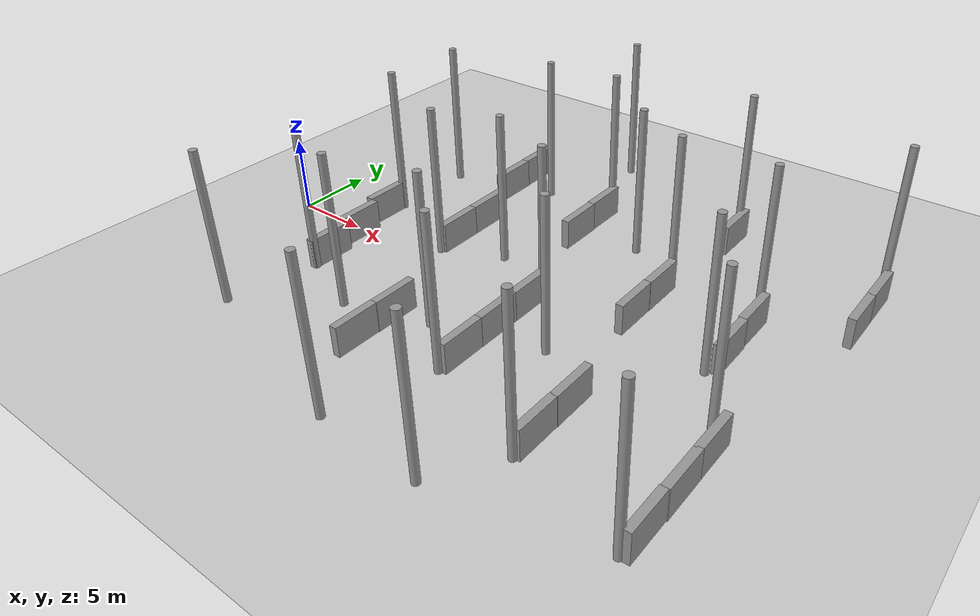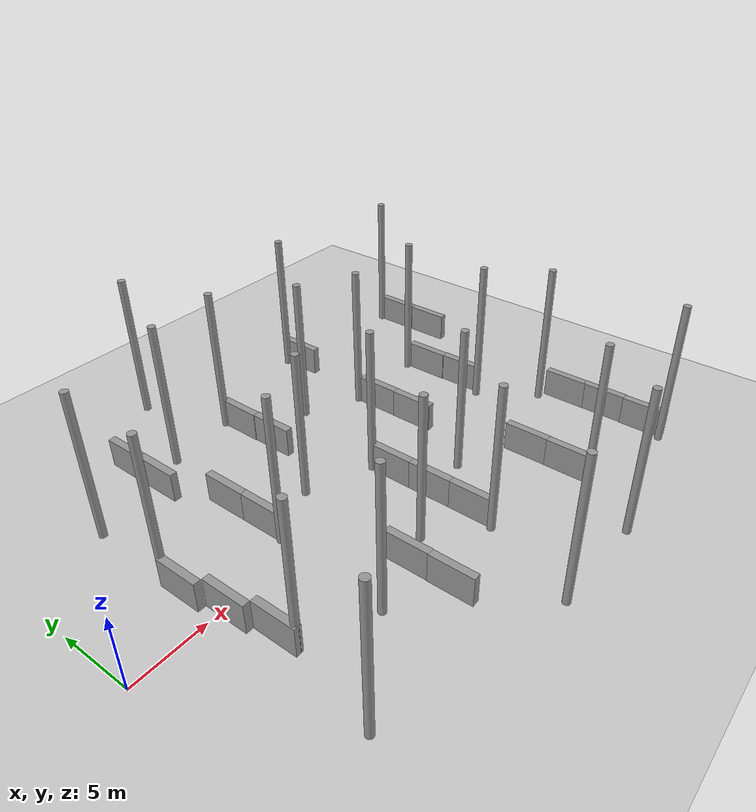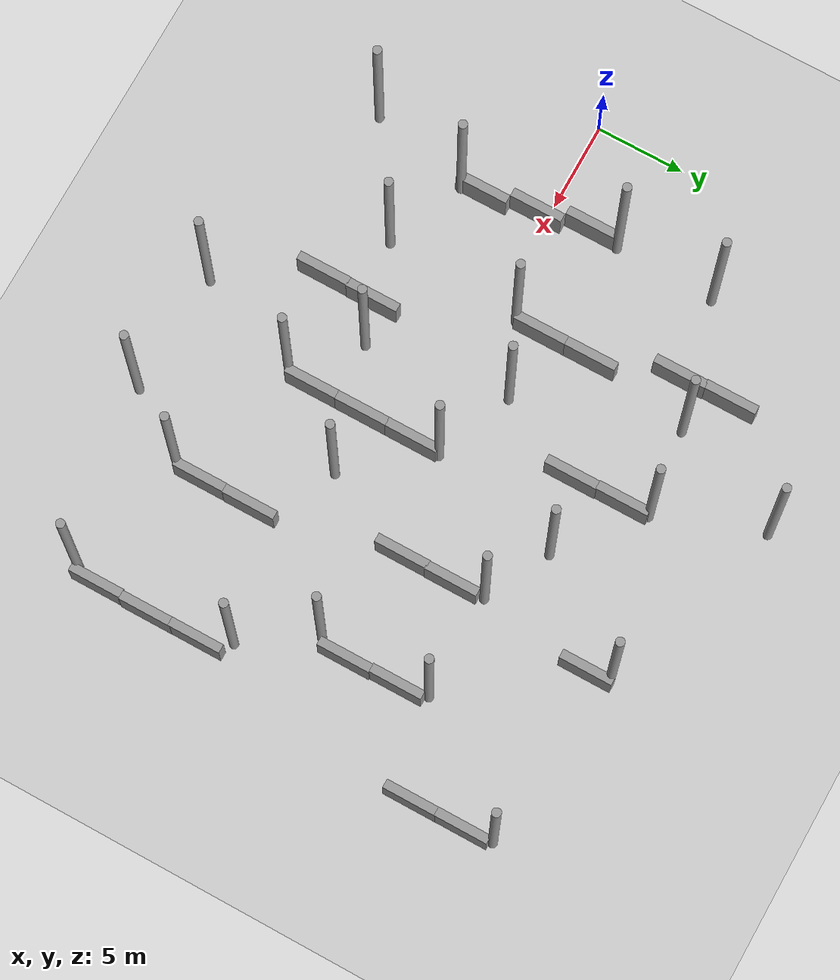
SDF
<sdf version="1.6">
 <world name="default">
  <light name="sun" type="directional">
   <pose>0 0 10 0 -0 0</pose>
   <diffuse>0.8 0.8 0.8 1</diffuse>
   <specular>0.2 0.2 0.2 1</specular>
   <attenuation>
    <range>1000</range>
    <constant>0.9</constant>
    <linear>0.01</linear>
    <quadratic>0.001</quadratic>
   </attenuation>
   <direction>-0.5 0.1 -0.9</direction>
  </light>
  <model name="ground_plane">
   <static>1</static>
   <link name="link">
    <collision name="collision">
     <geometry><plane><normal>0 0 1</normal><size>100 100</size></plane></geometry>
     <surface><friction><ode><mu>100</mu><mu2>50</mu2></ode></friction></surface>
    </collision>
    <visual name="visual">
     <cast_shadows>0</cast_shadows>
     <geometry><plane><normal>0 0 1</normal><size>100 100</size></plane></geometry>
     <material>
      <script><uri>file://media/materials/scripts/gazebo.material</uri><name>Gazebo/Grey</name></script>
     </material>
    </visual>
   </link>
  </model>
  <gravity>0 0 -9.8</gravity>
  <magnetic_field>6e-06 2.3e-05 -4.2e-05</magnetic_field>
  <atmosphere type="adiabatic"/>
  <physics name="default_physics" default="0" type="ode">
   <max_step_size>0.004</max_step_size>
   <real_time_factor>1</real_time_factor>
   <real_time_update_rate>250</real_time_update_rate>
  </physics>
  <scene><ambient>0.4 0.4 0.4 1</ambient><background>0.7 0.7 0.7 1</background><shadows>1</shadows></scene>
  <spherical_coordinates>
   <surface_model>EARTH_WGS84</surface_model>
   <latitude_deg>0</latitude_deg>
   <longitude_deg>0</longitude_deg>
   <elevation>0</elevation>
   <heading_deg>0</heading_deg>
  </spherical_coordinates>
  <model name="wall">
   <pose>5.41179 2.44691 1 0 -0 0</pose>
   <static>1</static>
   <link name="link">
    <inertial>
     <mass>100</mass>
     <inertia><ixx>0.83</ixx><ixy>0</ixy><ixz>0</ixz><iyy>0.83</iyy><iyz>0</iyz><izz>0.83</izz></inertia>
    </inertial>
    <collision name="collision"><geometry><box><size>0.5 3 2</size></box></geometry></collision>
    <visual name="visual">
     <geometry><box><size>0.5 3 2</size></box></geometry>
     <material>
      <script><uri>file://media/materials/scripts/gazebo.material</uri><name>Gazebo/Grey</name></script>
     </material>
    </visual>
   </link>
  </model>
  <model name="wall_clone">
   <pose>5.95054 -0.567157 1 0 -0 0</pose>
   <static>1</static>
   <link name="link">
    <inertial>
     <mass>100</mass>
     <inertia><ixx>0.83</ixx><ixy>0</ixy><ixz>0</ixz><iyy>0.83</iyy><iyz>0</iyz><izz>0.83</izz></inertia>
    </inertial>
    <collision name="collision"><geometry><box><size>0.5 3 2</size></box></geometry></collision>
    <visual name="visual">
     <geometry><box><size>0.5 3 2</size></box></geometry>
     <material>
      <script><uri>file://media/materials/scripts/gazebo.material</uri><name>Gazebo/Grey</name></script>
     </material>
    </visual>
   </link>
  </model>
  <model name="wall_clone_0">
   <pose>6.43646 -3.56819 1 0 -0 0</pose>
   <static>1</static>
   <link name="link">
    <inertial>
     <mass>100</mass>
     <inertia><ixx>0.83</ixx><ixy>0</ixy><ixz>0</ixz><iyy>0.83</iyy><iyz>0</iyz><izz>0.83</izz></inertia>
    </inertial>
    <collision name="collision"><geometry><box><size>0.5 3 2</size></box></geometry></collision>
    <visual name="visual">
     <geometry><box><size>0.5 3 2</size></box></geometry>
     <material>
      <script><uri>file://media/materials/scripts/gazebo.material</uri><name>Gazebo/Grey</name></script>
     </material>
    </visual>
   </link>
  </model>
  <model name="wall_clone_1">
   <pose>11.7455 5.7105 1 0 -0 0</pose>
   <static>1</static>
   <link name="link">
    <inertial>
     <mass>100</mass>
     <inertia><ixx>0.83</ixx><ixy>0</ixy><ixz>0</ixz><iyy>0.83</iyy><iyz>0</iyz><izz>0.83</izz></inertia>
    </inertial>
    <collision name="collision"><geometry><box><size>0.5 3 2</size></box></geometry></collision>
    <visual name="visual">
     <geometry><box><size>0.5 3 2</size></box></geometry>
     <material>
      <script><uri>file://media/materials/scripts/gazebo.material</uri><name>Gazebo/Grey</name></script>
     </material>
    </visual>
   </link>
  </model>
  <model name="wall_clone_2">
   <pose>11.7473 2.7721 1 0 -0 0</pose>
   <static>1</static>
   <link name="link">
    <inertial>
     <mass>100</mass>
     <inertia><ixx>0.83</ixx><ixy>0</ixy><ixz>0</ixz><iyy>0.83</iyy><iyz>0</iyz><izz>0.83</izz></inertia>
    </inertial>
    <collision name="collision"><geometry><box><size>0.5 3 2</size></box></geometry></collision>
    <visual name="visual">
     <geometry><box><size>0.5 3 2</size></box></geometry>
     <material>
      <script><uri>file://media/materials/scripts/gazebo.material</uri><name>Gazebo/Grey</name></script>
     </material>
    </visual>
   </link>
  </model>
  <model name="wall_clone_3">
   <pose>14.4191 -5.7272 1 0 -0 0</pose>
   <static>1</static>
   <link name="link">
    <inertial>
     <mass>100</mass>
     <inertia><ixx>0.83</ixx><ixy>0</ixy><ixz>0</ixz><iyy>0.83</iyy><iyz>0</iyz><izz>0.83</izz></inertia>
    </inertial>
    <collision name="collision"><geometry><box><size>0.5 3 2</size></box></geometry></collision>
    <visual name="visual">
     <geometry><box><size>0.5 3 2</size></box></geometry>
     <material>
      <script><uri>file://media/materials/scripts/gazebo.material</uri><name>Gazebo/Grey</name></script>
     </material>
    </visual>
   </link>
  </model>
  <model name="wall_clone_4">
   <pose>14.392 -8.67525 1 0 -0 0</pose>
   <static>1</static>
   <link name="link">
    <inertial>
     <mass>100</mass>
     <inertia><ixx>0.83</ixx><ixy>0</ixy><ixz>0</ixz><iyy>0.83</iyy><iyz>0</iyz><izz>0.83</izz></inertia>
    </inertial>
    <collision name="collision"><geometry><box><size>0.5 3 2</size></box></geometry></collision>
    <visual name="visual">
     <geometry><box><size>0.5 3 2</size></box></geometry>
     <material>
      <script><uri>file://media/materials/scripts/gazebo.material</uri><name>Gazebo/Grey</name></script>
     </material>
    </visual>
   </link>
  </model>
  <model name="wall_clone_5">
   <pose>17.7923 7.87364 1 0 -0 0</pose>
   <static>1</static>
   <link name="link">
    <inertial>
     <mass>100</mass>
     <inertia><ixx>0.83</ixx><ixy>0</ixy><ixz>0</ixz><iyy>0.83</iyy><iyz>0</iyz><izz>0.83</izz></inertia>
    </inertial>
    <collision name="collision"><geometry><box><size>0.5 3 2</size></box></geometry></collision>
    <visual name="visual">
     <geometry><box><size>0.5 3 2</size></box></geometry>
     <material>
      <script><uri>file://media/materials/scripts/gazebo.material</uri><name>Gazebo/Grey</name></script>
     </material>
    </visual>
   </link>
  </model>
  <model name="wall_clone_6">
   <pose>17.7557 10.828 1 0 -0 0</pose>
   <static>1</static>
   <link name="link">
    <inertial>
     <mass>100</mass>
     <inertia><ixx>0.83</ixx><ixy>0</ixy><ixz>0</ixz><iyy>0.83</iyy><iyz>0</iyz><izz>0.83</izz></inertia>
    </inertial>
    <collision name="collision"><geometry><box><size>0.5 3 2</size></box></geometry></collision>
    <visual name="visual">
     <geometry><box><size>0.5 3 2</size></box></geometry>
     <material>
      <script><uri>file://media/materials/scripts/gazebo.material</uri><name>Gazebo/Grey</name></script>
     </material>
    </visual>
   </link>
  </model>
  <model name="wall_clone_7">
   <pose>10.3069 13.1652 1 0 -0 0</pose>
   <static>1</static>
   <link name="link">
    <inertial>
     <mass>100</mass>
     <inertia><ixx>0.83</ixx><ixy>0</ixy><ixz>0</ixz><iyy>0.83</iyy><iyz>0</iyz><izz>0.83</izz></inertia>
    </inertial>
    <collision name="collision"><geometry><box><size>0.5 3 2</size></box></geometry></collision>
    <visual name="visual">
     <geometry><box><size>0.5 3 2</size></box></geometry>
     <material>
      <script><uri>file://media/materials/scripts/gazebo.material</uri><name>Gazebo/Grey</name></script>
     </material>
    </visual>
   </link>
  </model>
  <model name="wall_clone_8">
   <pose>10.3381 10.2426 1 0 -0 0</pose>
   <static>1</static>
   <link name="link">
    <inertial>
     <mass>100</mass>
     <inertia><ixx>0.83</ixx><ixy>0</ixy><ixz>0</ixz><iyy>0.83</iyy><iyz>0</iyz><izz>0.83</izz></inertia>
    </inertial>
    <collision name="collision"><geometry><box><size>0.5 3 2</size></box></geometry></collision>
    <visual name="visual">
     <geometry><box><size>0.5 3 2</size></box></geometry>
     <material>
      <script><uri>file://media/materials/scripts/gazebo.material</uri><name>Gazebo/Grey</name></script>
     </material>
    </visual>
   </link>
  </model>
  <model name="wall_clone_9">
   <pose>20.0369 -3.24786 1 0 -0 0</pose>
   <static>1</static>
   <link name="link">
    <inertial>
     <mass>100</mass>
     <inertia><ixx>0.83</ixx><ixy>0</ixy><ixz>0</ixz><iyy>0.83</iyy><iyz>0</iyz><izz>0.83</izz></inertia>
    </inertial>
    <collision name="collision"><geometry><box><size>0.5 3 2</size></box></geometry></collision>
    <visual name="visual">
     <geometry><box><size>0.5 3 2</size></box></geometry>
     <material>
      <script><uri>file://media/materials/scripts/gazebo.material</uri><name>Gazebo/Grey</name></script>
     </material>
    </visual>
   </link>
  </model>
  <model name="wall_clone_10">
   <pose>20.0422 -0.270599 1 0 -0 0</pose>
   <static>1</static>
   <link name="link">
    <inertial>
     <mass>100</mass>
     <inertia><ixx>0.83</ixx><ixy>0</ixy><ixz>0</ixz><iyy>0.83</iyy><iyz>0</iyz><izz>0.83</izz></inertia>
    </inertial>
    <collision name="collision"><geometry><box><size>0.5 3 2</size></box></geometry></collision>
    <visual name="visual">
     <geometry><box><size>0.5 3 2</size></box></geometry>
     <material>
      <script><uri>file://media/materials/scripts/gazebo.material</uri><name>Gazebo/Grey</name></script>
     </material>
    </visual>
   </link>
  </model>
  <model name="wall_clone_11">
   <pose>20.0305 -6.23695 1 0 -0 0</pose>
   <static>1</static>
   <link name="link">
    <inertial>
     <mass>100</mass>
     <inertia><ixx>0.83</ixx><ixy>0</ixy><ixz>0</ixz><iyy>0.83</iyy><iyz>0</iyz><izz>0.83</izz></inertia>
    </inertial>
    <collision name="collision"><geometry><box><size>0.5 3 2</size></box></geometry></collision>
    <visual name="visual">
     <geometry><box><size>0.5 3 2</size></box></geometry>
     <material>
      <script><uri>file://media/materials/scripts/gazebo.material</uri><name>Gazebo/Grey</name></script>
     </material>
    </visual>
   </link>
  </model>
  <model name="wall_clone_12">
   <pose>25.6834 5.17051 1 0 -0 0</pose>
   <static>1</static>
   <link name="link">
    <inertial>
     <mass>100</mass>
     <inertia><ixx>0.83</ixx><ixy>0</ixy><ixz>0</ixz><iyy>0.83</iyy><iyz>0</iyz><izz>0.83</izz></inertia>
    </inertial>
    <collision name="collision"><geometry><box><size>0.5 3 2</size></box></geometry></collision>
    <visual name="visual">
     <geometry><box><size>0.5 3 2</size></box></geometry>
     <material>
      <script><uri>file://media/materials/scripts/gazebo.material</uri><name>Gazebo/Grey</name></script>
     </material>
    </visual>
   </link>
  </model>
  <model name="wall_clone_13">
   <pose>25.6623 2.2499 1 0 -0 0</pose>
   <static>1</static>
   <link name="link">
    <inertial>
     <mass>100</mass>
     <inertia><ixx>0.83</ixx><ixy>0</ixy><ixz>0</ixz><iyy>0.83</iyy><iyz>0</iyz><izz>0.83</izz></inertia>
    </inertial>
    <collision name="collision"><geometry><box><size>0.5 3 2</size></box></geometry></collision>
    <visual name="visual">
     <geometry><box><size>0.5 3 2</size></box></geometry>
     <material>
      <script><uri>file://media/materials/scripts/gazebo.material</uri><name>Gazebo/Grey</name></script>
     </material>
    </visual>
   </link>
  </model>
  <model name="wall_clone_14">
   <pose>26.4244 13.3677 1 0 -0 0</pose>
   <static>1</static>
   <link name="link">
    <inertial>
     <mass>100</mass>
     <inertia><ixx>0.83</ixx><ixy>0</ixy><ixz>0</ixz><iyy>0.83</iyy><iyz>0</iyz><izz>0.83</izz></inertia>
    </inertial>
    <collision name="collision"><geometry><box><size>0.5 3 2</size></box></geometry></collision>
    <visual name="visual">
     <geometry><box><size>0.5 3 2</size></box></geometry>
     <material>
      <script><uri>file://media/materials/scripts/gazebo.material</uri><name>Gazebo/Grey</name></script>
     </material>
    </visual>
   </link>
  </model>
  <model name="wall_clone_15">
   <pose>27.168 -5.85611 1 0 -0 0</pose>
   <static>1</static>
   <link name="link">
    <inertial>
     <mass>100</mass>
     <inertia><ixx>0.83</ixx><ixy>0</ixy><ixz>0</ixz><iyy>0.83</iyy><iyz>0</iyz><izz>0.83</izz></inertia>
    </inertial>
    <collision name="collision"><geometry><box><size>0.5 3 2</size></box></geometry></collision>
    <visual name="visual">
     <geometry><box><size>0.5 3 2</size></box></geometry>
     <material>
      <script><uri>file://media/materials/scripts/gazebo.material</uri><name>Gazebo/Grey</name></script>
     </material>
    </visual>
   </link>
  </model>
  <model name="wall_clone_16">
   <pose>27.1493 -8.81732 1 0 -0 0</pose>
   <static>1</static>
   <link name="link">
    <inertial>
     <mass>100</mass>
     <inertia><ixx>0.83</ixx><ixy>0</ixy><ixz>0</ixz><iyy>0.83</iyy><iyz>0</iyz><izz>0.83</izz></inertia>
    </inertial>
    <collision name="collision"><geometry><box><size>0.5 3 2</size></box></geometry></collision>
    <visual name="visual">
     <geometry><box><size>0.5 3 2</size></box></geometry>
     <material>
      <script><uri>file://media/materials/scripts/gazebo.material</uri><name>Gazebo/Grey</name></script>
     </material>
    </visual>
   </link>
  </model>
  <model name="wall_clone_17">
   <pose>31.7688 2.30487 1 0 -0 0</pose>
   <static>1</static>
   <link name="link">
    <inertial>
     <mass>100</mass>
     <inertia><ixx>0.83</ixx><ixy>0</ixy><ixz>0</ixz><iyy>0.83</iyy><iyz>0</iyz><izz>0.83</izz></inertia>
    </inertial>
    <collision name="collision"><geometry><box><size>0.5 3 2</size></box></geometry></collision>
    <visual name="visual">
     <geometry><box><size>0.5 3 2</size></box></geometry>
     <material>
      <script><uri>file://media/materials/scripts/gazebo.material</uri><name>Gazebo/Grey</name></script>
     </material>
    </visual>
   </link>
  </model>
  <model name="wall_clone_18">
   <pose>31.7098 5.28532 1 0 -0 0</pose>
   <static>1</static>
   <link name="link">
    <inertial>
     <mass>100</mass>
     <inertia><ixx>0.83</ixx><ixy>0</ixy><ixz>0</ixz><iyy>0.83</iyy><iyz>0</iyz><izz>0.83</izz></inertia>
    </inertial>
    <collision name="collision"><geometry><box><size>0.5 3 2</size></box></geometry></collision>
    <visual name="visual">
     <geometry><box><size>0.5 3 2</size></box></geometry>
     <material>
      <script><uri>file://media/materials/scripts/gazebo.material</uri><name>Gazebo/Grey</name></script>
     </material>
    </visual>
   </link>
  </model>
  <model name="wall_clone_19">
   <pose>34.5605 -4.80946 1 0 -0 0</pose>
   <static>1</static>
   <link name="link">
    <inertial>
     <mass>100</mass>
     <inertia><ixx>0.83</ixx><ixy>0</ixy><ixz>0</ixz><iyy>0.83</iyy><iyz>0</iyz><izz>0.83</izz></inertia>
    </inertial>
    <collision name="collision"><geometry><box><size>0.5 3 2</size></box></geometry></collision>
    <visual name="visual">
     <geometry><box><size>0.5 3 2</size></box></geometry>
     <material>
      <script><uri>file://media/materials/scripts/gazebo.material</uri><name>Gazebo/Grey</name></script>
     </material>
    </visual>
   </link>
  </model>
  <model name="wall_clone_20">
   <pose>34.5679 -7.69178 1 0 -0 0</pose>
   <static>1</static>
   <link name="link">
    <inertial>
     <mass>100</mass>
     <inertia><ixx>0.83</ixx><ixy>0</ixy><ixz>0</ixz><iyy>0.83</iyy><iyz>0</iyz><izz>0.83</izz></inertia>
    </inertial>
    <collision name="collision"><geometry><box><size>0.5 3 2</size></box></geometry></collision>
    <visual name="visual">
     <geometry><box><size>0.5 3 2</size></box></geometry>
     <material>
      <script><uri>file://media/materials/scripts/gazebo.material</uri><name>Gazebo/Grey</name></script>
     </material>
    </visual>
   </link>
  </model>
  <model name="wall_clone_21">
   <pose>34.5161 -10.681 1 0 -0 0</pose>
   <static>1</static>
   <link name="link">
    <inertial>
     <mass>100</mass>
     <inertia><ixx>0.83</ixx><ixy>0</ixy><ixz>0</ixz><iyy>0.83</iyy><iyz>0</iyz><izz>0.83</izz></inertia>
    </inertial>
    <collision name="collision"><geometry><box><size>0.5 3 2</size></box></geometry></collision>
    <visual name="visual">
     <geometry><box><size>0.5 3 2</size></box></geometry>
     <material>
      <script><uri>file://media/materials/scripts/gazebo.material</uri><name>Gazebo/Grey</name></script>
     </material>
    </visual>
   </link>
  </model>
  <model name="wall_clone_22">
   <pose>36.5424 11.7151 1 0 -0 0</pose>
   <static>1</static>
   <link name="link">
    <inertial>
     <mass>100</mass>
     <inertia><ixx>0.83</ixx><ixy>0</ixy><ixz>0</ixz><iyy>0.83</iyy><iyz>0</iyz><izz>0.83</izz></inertia>
    </inertial>
    <collision name="collision"><geometry><box><size>0.5 3 2</size></box></geometry></collision>
    <visual name="visual">
     <geometry><box><size>0.5 3 2</size></box></geometry>
     <material>
      <script><uri>file://media/materials/scripts/gazebo.material</uri><name>Gazebo/Grey</name></script>
     </material>
    </visual>
   </link>
  </model>
  <model name="wall_clone_23">
   <pose>36.5489 8.77559 1 0 -0 0</pose>
   <static>1</static>
   <link name="link">
    <inertial>
     <mass>100</mass>
     <inertia><ixx>0.83</ixx><ixy>0</ixy><ixz>0</ixz><iyy>0.83</iyy><iyz>0</iyz><izz>0.83</izz></inertia>
    </inertial>
    <collision name="collision"><geometry><box><size>0.5 3 2</size></box></geometry></collision>
    <visual name="visual">
     <geometry><box><size>0.5 3 2</size></box></geometry>
     <material>
      <script><uri>file://media/materials/scripts/gazebo.material</uri><name>Gazebo/Grey</name></script>
     </material>
    </visual>
   </link>
  </model>
  <model name="column">
   <pose>5.48459 3.9918 5 0 -0 0</pose>
   <static>1</static>
   <link name="link">
    <inertial>
     <mass>100</mass>
     <inertia><ixx>0.83</ixx><ixy>0</ixy><ixz>0</ixz><iyy>0.83</iyy><iyz>0</iyz><izz>0.83</izz></inertia>
    </inertial>
    <collision name="collision">
     <geometry><cylinder><radius>0.25</radius><length>10</length></cylinder></geometry>
    </collision>
    <visual name="visual">
     <geometry><cylinder><radius>0.25</radius><length>10</length></cylinder></geometry>
     <material>
      <script><uri>file://media/materials/scripts/gazebo.material</uri><name>Gazebo/Grey</name></script>
     </material>
    </visual>
   </link>
  </model>
  <model name="column_clone">
   <pose>6.51855 -4.8198 5 0 -0 0</pose>
   <static>1</static>
   <link name="link">
    <inertial>
     <mass>100</mass>
     <inertia><ixx>0.83</ixx><ixy>0</ixy><ixz>0</ixz><iyy>0.83</iyy><iyz>0</iyz><izz>0.83</izz></inertia>
    </inertial>
    <collision name="collision">
     <geometry><cylinder><radius>0.25</radius><length>10</length></cylinder></geometry>
    </collision>
    <visual name="visual">
     <geometry><cylinder><radius>0.25</radius><length>10</length></cylinder></geometry>
     <material>
      <script><uri>file://media/materials/scripts/gazebo.material</uri><name>Gazebo/Grey</name></script>
     </material>
    </visual>
   </link>
  </model>
  <model name="column_clone_0">
   <pose>11.5932 1.2383 5 0 -0 0</pose>
   <static>1</static>
   <link name="link">
    <inertial>
     <mass>100</mass>
     <inertia><ixx>0.83</ixx><ixy>0</ixy><ixz>0</ixz><iyy>0.83</iyy><iyz>0</iyz><izz>0.83</izz></inertia>
    </inertial>
    <collision name="collision">
     <geometry><cylinder><radius>0.25</radius><length>10</length></cylinder></geometry>
    </collision>
    <visual name="visual">
     <geometry><cylinder><radius>0.25</radius><length>10</length></cylinder></geometry>
     <material>
      <script><uri>file://media/materials/scripts/gazebo.material</uri><name>Gazebo/Grey</name></script>
     </material>
    </visual>
   </link>
  </model>
  <model name="column_clone_1">
   <pose>5.63831 9.70398 5 0 -0 0</pose>
   <static>1</static>
   <link name="link">
    <inertial>
     <mass>100</mass>
     <inertia><ixx>0.83</ixx><ixy>0</ixy><ixz>0</ixz><iyy>0.83</iyy><iyz>0</iyz><izz>0.83</izz></inertia>
    </inertial>
    <collision name="collision">
     <geometry><cylinder><radius>0.25</radius><length>10</length></cylinder></geometry>
    </collision>
    <visual name="visual">
     <geometry><cylinder><radius>0.25</radius><length>10</length></cylinder></geometry>
     <material>
      <script><uri>file://media/materials/scripts/gazebo.material</uri><name>Gazebo/Grey</name></script>
     </material>
    </visual>
   </link>
  </model>
  <model name="column_clone_2">
   <pose>12.7022 11.6731 5 0 -0 0</pose>
   <static>1</static>
   <link name="link">
    <inertial>
     <mass>100</mass>
     <inertia><ixx>0.83</ixx><ixy>0</ixy><ixz>0</ixz><iyy>0.83</iyy><iyz>0</iyz><izz>0.83</izz></inertia>
    </inertial>
    <collision name="collision">
     <geometry><cylinder><radius>0.25</radius><length>10</length></cylinder></geometry>
    </collision>
    <visual name="visual">
     <geometry><cylinder><radius>0.25</radius><length>10</length></cylinder></geometry>
     <material>
      <script><uri>file://media/materials/scripts/gazebo.material</uri><name>Gazebo/Grey</name></script>
     </material>
    </visual>
   </link>
  </model>
  <model name="column_clone_3">
   <pose>15.5086 2.94713 5 0 -0 0</pose>
   <static>1</static>
   <link name="link">
    <inertial>
     <mass>100</mass>
     <inertia><ixx>0.83</ixx><ixy>0</ixy><ixz>0</ixz><iyy>0.83</iyy><iyz>0</iyz><izz>0.83</izz></inertia>
    </inertial>
    <collision name="collision">
     <geometry><cylinder><radius>0.25</radius><length>10</length></cylinder></geometry>
    </collision>
    <visual name="visual">
     <geometry><cylinder><radius>0.25</radius><length>10</length></cylinder></geometry>
     <material>
      <script><uri>file://media/materials/scripts/gazebo.material</uri><name>Gazebo/Grey</name></script>
     </material>
    </visual>
   </link>
  </model>
  <model name="column_clone_4">
   <pose>16.5521 -5.01714 5 0 -0 0</pose>
   <static>1</static>
   <link name="link">
    <inertial>
     <mass>100</mass>
     <inertia><ixx>0.83</ixx><ixy>0</ixy><ixz>0</ixz><iyy>0.83</iyy><iyz>0</iyz><izz>0.83</izz></inertia>
    </inertial>
    <collision name="collision">
     <geometry><cylinder><radius>0.25</radius><length>10</length></cylinder></geometry>
    </collision>
    <visual name="visual">
     <geometry><cylinder><radius>0.25</radius><length>10</length></cylinder></geometry>
     <material>
      <script><uri>file://media/materials/scripts/gazebo.material</uri><name>Gazebo/Grey</name></script>
     </material>
    </visual>
   </link>
  </model>
  <model name="column_clone_5">
   <pose>10.9973 -6.6126 5 0 -0 0</pose>
   <static>1</static>
   <link name="link">
    <inertial>
     <mass>100</mass>
     <inertia><ixx>0.83</ixx><ixy>0</ixy><ixz>0</ixz><iyy>0.83</iyy><iyz>0</iyz><izz>0.83</izz></inertia>
    </inertial>
    <collision name="collision">
     <geometry><cylinder><radius>0.25</radius><length>10</length></cylinder></geometry>
    </collision>
    <visual name="visual">
     <geometry><cylinder><radius>0.25</radius><length>10</length></cylinder></geometry>
     <material>
      <script><uri>file://media/materials/scripts/gazebo.material</uri><name>Gazebo/Grey</name></script>
     </material>
    </visual>
   </link>
  </model>
  <model name="column_clone_6">
   <pose>5.1211 -10.5292 5 0 -0 0</pose>
   <static>1</static>
   <link name="link">
    <inertial>
     <mass>100</mass>
     <inertia><ixx>0.83</ixx><ixy>0</ixy><ixz>0</ixz><iyy>0.83</iyy><iyz>0</iyz><izz>0.83</izz></inertia>
    </inertial>
    <collision name="collision">
     <geometry><cylinder><radius>0.25</radius><length>10</length></cylinder></geometry>
    </collision>
    <visual name="visual">
     <geometry><cylinder><radius>0.25</radius><length>10</length></cylinder></geometry>
     <material>
      <script><uri>file://media/materials/scripts/gazebo.material</uri><name>Gazebo/Grey</name></script>
     </material>
    </visual>
   </link>
  </model>
  <model name="column_clone_7">
   <pose>19.7658 -7.78276 5 0 -0 0</pose>
   <static>1</static>
   <link name="link">
    <inertial>
     <mass>100</mass>
     <inertia><ixx>0.83</ixx><ixy>0</ixy><ixz>0</ixz><iyy>0.83</iyy><iyz>0</iyz><izz>0.83</izz></inertia>
    </inertial>
    <collision name="collision">
     <geometry><cylinder><radius>0.25</radius><length>10</length></cylinder></geometry>
    </collision>
    <visual name="visual">
     <geometry><cylinder><radius>0.25</radius><length>10</length></cylinder></geometry>
     <material>
      <script><uri>file://media/materials/scripts/gazebo.material</uri><name>Gazebo/Grey</name></script>
     </material>
    </visual>
   </link>
  </model>
  <model name="column_clone_8">
   <pose>19.928 1.23876 5 0 -0 0</pose>
   <static>1</static>
   <link name="link">
    <inertial>
     <mass>100</mass>
     <inertia><ixx>0.83</ixx><ixy>0</ixy><ixz>0</ixz><iyy>0.83</iyy><iyz>0</iyz><izz>0.83</izz></inertia>
    </inertial>
    <collision name="collision">
     <geometry><cylinder><radius>0.25</radius><length>10</length></cylinder></geometry>
    </collision>
    <visual name="visual">
     <geometry><cylinder><radius>0.25</radius><length>10</length></cylinder></geometry>
     <material>
      <script><uri>file://media/materials/scripts/gazebo.material</uri><name>Gazebo/Grey</name></script>
     </material>
    </visual>
   </link>
  </model>
  <model name="column_clone_9">
   <pose>17.5432 12.2932 5 0 -0 0</pose>
   <static>1</static>
   <link name="link">
    <inertial>
     <mass>100</mass>
     <inertia><ixx>0.83</ixx><ixy>0</ixy><ixz>0</ixz><iyy>0.83</iyy><iyz>0</iyz><izz>0.83</izz></inertia>
    </inertial>
    <collision name="collision">
     <geometry><cylinder><radius>0.25</radius><length>10</length></cylinder></geometry>
    </collision>
    <visual name="visual">
     <geometry><cylinder><radius>0.25</radius><length>10</length></cylinder></geometry>
     <material>
      <script><uri>file://media/materials/scripts/gazebo.material</uri><name>Gazebo/Grey</name></script>
     </material>
    </visual>
   </link>
  </model>
  <model name="column_clone_10">
   <pose>26.1305 14.6079 5 0 -0 0</pose>
   <static>1</static>
   <link name="link">
    <inertial>
     <mass>100</mass>
     <inertia><ixx>0.83</ixx><ixy>0</ixy><ixz>0</ixz><iyy>0.83</iyy><iyz>0</iyz><izz>0.83</izz></inertia>
    </inertial>
    <collision name="collision">
     <geometry><cylinder><radius>0.25</radius><length>10</length></cylinder></geometry>
    </collision>
    <visual name="visual">
     <geometry><cylinder><radius>0.25</radius><length>10</length></cylinder></geometry>
     <material>
      <script><uri>file://media/materials/scripts/gazebo.material</uri><name>Gazebo/Grey</name></script>
     </material>
    </visual>
   </link>
  </model>
  <model name="column_clone_11">
   <pose>25.4745 6.93983 5 0 -0 0</pose>
   <static>1</static>
   <link name="link">
    <inertial>
     <mass>100</mass>
     <inertia><ixx>0.83</ixx><ixy>0</ixy><ixz>0</ixz><iyy>0.83</iyy><iyz>0</iyz><izz>0.83</izz></inertia>
    </inertial>
    <collision name="collision">
     <geometry><cylinder><radius>0.25</radius><length>10</length></cylinder></geometry>
    </collision>
    <visual name="visual">
     <geometry><cylinder><radius>0.25</radius><length>10</length></cylinder></geometry>
     <material>
      <script><uri>file://media/materials/scripts/gazebo.material</uri><name>Gazebo/Grey</name></script>
     </material>
    </visual>
   </link>
  </model>
  <model name="column_clone_12">
   <pose>21.81 8.76541 5 0 -0 0</pose>
   <static>1</static>
   <link name="link">
    <inertial>
     <mass>100</mass>
     <inertia><ixx>0.83</ixx><ixy>0</ixy><ixz>0</ixz><iyy>0.83</iyy><iyz>0</iyz><izz>0.83</izz></inertia>
    </inertial>
    <collision name="collision">
     <geometry><cylinder><radius>0.25</radius><length>10</length></cylinder></geometry>
    </collision>
    <visual name="visual">
     <geometry><cylinder><radius>0.25</radius><length>10</length></cylinder></geometry>
     <material>
      <script><uri>file://media/materials/scripts/gazebo.material</uri><name>Gazebo/Grey</name></script>
     </material>
    </visual>
   </link>
  </model>
  <model name="column_clone_13">
   <pose>23.3837 -3.0225 5 0 -0 0</pose>
   <static>1</static>
   <link name="link">
    <inertial>
     <mass>100</mass>
     <inertia><ixx>0.83</ixx><ixy>0</ixy><ixz>0</ixz><iyy>0.83</iyy><iyz>0</iyz><izz>0.83</izz></inertia>
    </inertial>
    <collision name="collision">
     <geometry><cylinder><radius>0.25</radius><length>10</length></cylinder></geometry>
    </collision>
    <visual name="visual">
     <geometry><cylinder><radius>0.25</radius><length>10</length></cylinder></geometry>
     <material>
      <script><uri>file://media/materials/scripts/gazebo.material</uri><name>Gazebo/Grey</name></script>
     </material>
    </visual>
   </link>
  </model>
  <model name="column_clone_14">
   <pose>26.979 -10.3463 5 0 -0 0</pose>
   <static>1</static>
   <link name="link">
    <inertial>
     <mass>100</mass>
     <inertia><ixx>0.83</ixx><ixy>0</ixy><ixz>0</ixz><iyy>0.83</iyy><iyz>0</iyz><izz>0.83</izz></inertia>
    </inertial>
    <collision name="collision">
     <geometry><cylinder><radius>0.25</radius><length>10</length></cylinder></geometry>
    </collision>
    <visual name="visual">
     <geometry><cylinder><radius>0.25</radius><length>10</length></cylinder></geometry>
     <material>
      <script><uri>file://media/materials/scripts/gazebo.material</uri><name>Gazebo/Grey</name></script>
     </material>
    </visual>
   </link>
  </model>
  <model name="column_clone_15">
   <pose>33.732 -3.14261 5 0 -0 0</pose>
   <static>1</static>
   <link name="link">
    <inertial>
     <mass>100</mass>
     <inertia><ixx>0.83</ixx><ixy>0</ixy><ixz>0</ixz><iyy>0.83</iyy><iyz>0</iyz><izz>0.83</izz></inertia>
    </inertial>
    <collision name="collision">
     <geometry><cylinder><radius>0.25</radius><length>10</length></cylinder></geometry>
    </collision>
    <visual name="visual">
     <geometry><cylinder><radius>0.25</radius><length>10</length></cylinder></geometry>
     <material>
      <script><uri>file://media/materials/scripts/gazebo.material</uri><name>Gazebo/Grey</name></script>
     </material>
    </visual>
   </link>
  </model>
  <model name="column_clone_16">
   <pose>34.1326 -12.0756 5 0 -0 0</pose>
   <static>1</static>
   <link name="link">
    <inertial>
     <mass>100</mass>
     <inertia><ixx>0.83</ixx><ixy>0</ixy><ixz>0</ixz><iyy>0.83</iyy><iyz>0</iyz><izz>0.83</izz></inertia>
    </inertial>
    <collision name="collision">
     <geometry><cylinder><radius>0.25</radius><length>10</length></cylinder></geometry>
    </collision>
    <visual name="visual">
     <geometry><cylinder><radius>0.25</radius><length>10</length></cylinder></geometry>
     <material>
      <script><uri>file://media/materials/scripts/gazebo.material</uri><name>Gazebo/Grey</name></script>
     </material>
    </visual>
   </link>
  </model>
  <model name="column_clone_17">
   <pose>31.2687 0.644613 5 0 -0 0</pose>
   <static>1</static>
   <link name="link">
    <inertial>
     <mass>100</mass>
     <inertia><ixx>0.83</ixx><ixy>0</ixy><ixz>0</ixz><iyy>0.83</iyy><iyz>0</iyz><izz>0.83</izz></inertia>
    </inertial>
    <collision name="collision">
     <geometry><cylinder><radius>0.25</radius><length>10</length></cylinder></geometry>
    </collision>
    <visual name="visual">
     <geometry><cylinder><radius>0.25</radius><length>10</length></cylinder></geometry>
     <material>
      <script><uri>file://media/materials/scripts/gazebo.material</uri><name>Gazebo/Grey</name></script>
     </material>
    </visual>
   </link>
  </model>
  <model name="column_clone_18">
   <pose>31.3297 6.92138 5 0 -0 0</pose>
   <static>1</static>
   <link name="link">
    <inertial>
     <mass>100</mass>
     <inertia><ixx>0.83</ixx><ixy>0</ixy><ixz>0</ixz><iyy>0.83</iyy><iyz>0</iyz><izz>0.83</izz></inertia>
    </inertial>
    <collision name="collision">
     <geometry><cylinder><radius>0.25</radius><length>10</length></cylinder></geometry>
    </collision>
    <visual name="visual">
     <geometry><cylinder><radius>0.25</radius><length>10</length></cylinder></geometry>
     <material>
      <script><uri>file://media/materials/scripts/gazebo.material</uri><name>Gazebo/Grey</name></script>
     </material>
    </visual>
   </link>
  </model>
  <model name="column_clone_19">
   <pose>36.3226 13.3528 5 0 -0 0</pose>
   <static>1</static>
   <link name="link">
    <inertial>
     <mass>100</mass>
     <inertia><ixx>0.83</ixx><ixy>0</ixy><ixz>0</ixz><iyy>0.83</iyy><iyz>0</iyz><izz>0.83</izz></inertia>
    </inertial>
    <collision name="collision">
     <geometry><cylinder><radius>0.25</radius><length>10</length></cylinder></geometry>
    </collision>
    <visual name="visual">
     <geometry><cylinder><radius>0.25</radius><length>10</length></cylinder></geometry>
     <material>
      <script><uri>file://media/materials/scripts/gazebo.material</uri><name>Gazebo/Grey</name></script>
     </material>
    </visual>
   </link>
  </model>
  <model name="column_clone_20">
   <pose>17.4051 -13.9022 5 0 -0 0</pose>
   <static>1</static>
   <link name="link">
    <inertial>
     <mass>100</mass>
     <inertia><ixx>0.83</ixx><ixy>0</ixy><ixz>0</ixz><iyy>0.83</iyy><iyz>0</iyz><izz>0.83</izz></inertia>
    </inertial>
    <collision name="collision">
     <geometry><cylinder><radius>0.25</radius><length>10</length></cylinder></geometry>
    </collision>
    <visual name="visual">
     <geometry><cylinder><radius>0.25</radius><length>10</length></cylinder></geometry>
     <material>
      <script><uri>file://media/materials/scripts/gazebo.material</uri><name>Gazebo/Grey</name></script>
     </material>
    </visual>
   </link>
  </model>
  <model name="column_clone_21">
   <pose>15.416 18.1292 5 0 -0 0</pose>
   <static>1</static>
   <link name="link">
    <inertial>
     <mass>100</mass>
     <inertia><ixx>0.83</ixx><ixy>0</ixy><ixz>0</ixz><iyy>0.83</iyy><iyz>0</iyz><izz>0.83</izz></inertia>
    </inertial>
    <collision name="collision">
     <geometry><cylinder><radius>0.25</radius><length>10</length></cylinder></geometry>
    </collision>
    <visual name="visual">
     <geometry><cylinder><radius>0.25</radius><length>10</length></cylinder></geometry>
     <material>
      <script><uri>file://media/materials/scripts/gazebo.material</uri><name>Gazebo/Grey</name></script>
     </material>
    </visual>
   </link>
  </model>
  <model name="column_clone_22">
   <pose>24.3382 -14.1877 5 0 -0 0</pose>
   <static>1</static>
   <link name="link">
    <inertial>
     <mass>100</mass>
     <inertia><ixx>0.83</ixx><ixy>0</ixy><ixz>0</ixz><iyy>0.83</iyy><iyz>0</iyz><izz>0.83</izz></inertia>
    </inertial>
    <collision name="collision">
     <geometry><cylinder><radius>0.25</radius><length>10</length></cylinder></geometry>
    </collision>
    <visual name="visual">
     <geometry><cylinder><radius>0.25</radius><length>10</length></cylinder></geometry>
     <material>
      <script><uri>file://media/materials/scripts/gazebo.material</uri><name>Gazebo/Grey</name></script>
     </material>
    </visual>
   </link>
  </model>
 </world>
</sdf>
